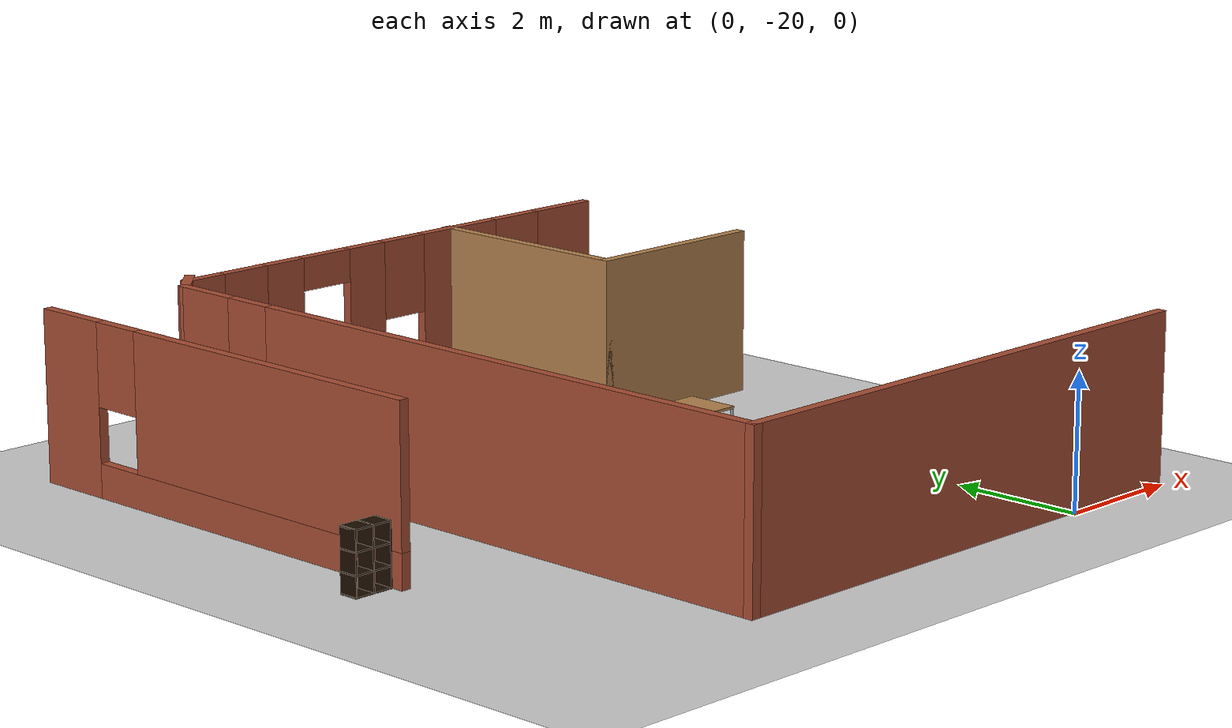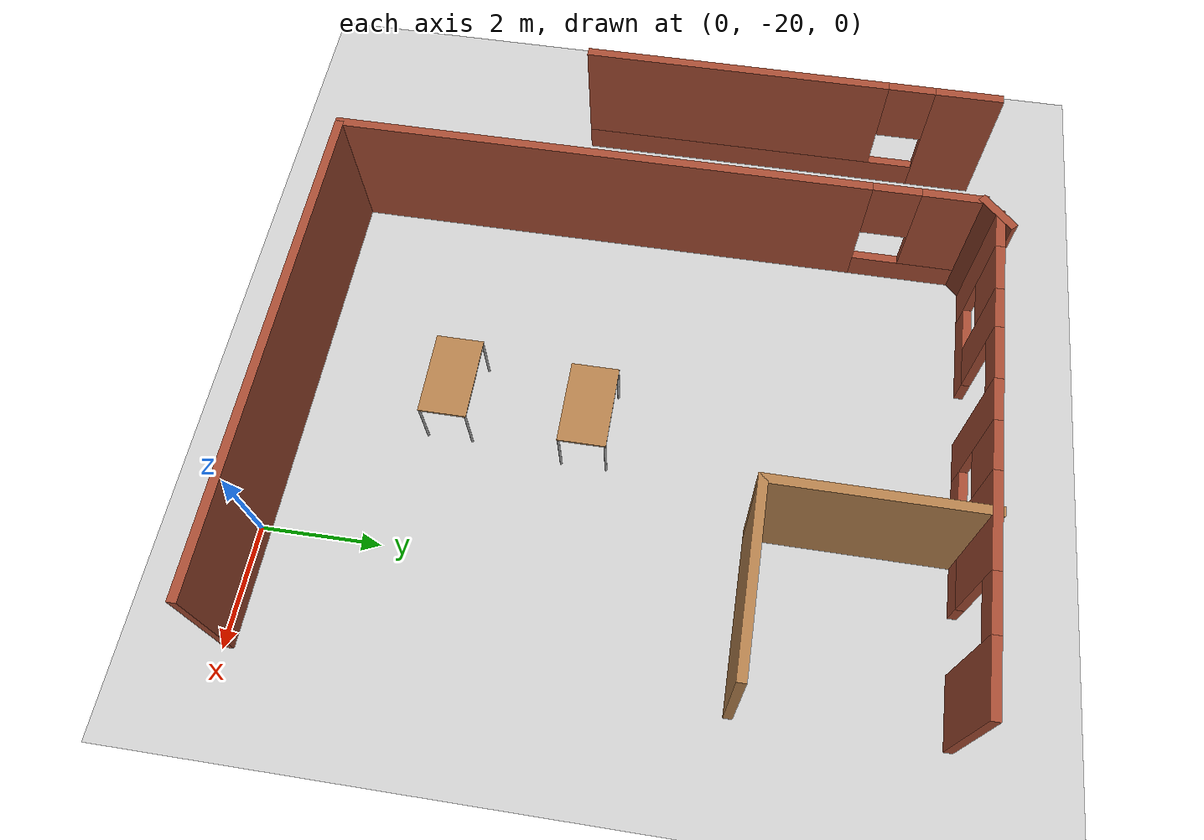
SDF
<sdf version="1.6">
 <world name="default">
  <model name="ground_plane">
   <static>1</static>
   <link name="link">
    <collision name="collision">
     <geometry><plane><normal>0 0 1</normal><size>100 100</size></plane></geometry>
     <surface><friction><ode><mu>100</mu><mu2>50</mu2></ode></friction></surface>
    </collision>
    <visual name="visual">
     <cast_shadows>0</cast_shadows>
     <geometry><plane><normal>0 0 1</normal><size>100 100</size></plane></geometry>
     <material>
      <script><uri>file://media/materials/scripts/gazebo.material</uri><name>Gazebo/Grey</name></script>
     </material>
    </visual>
   </link>
  </model>
  <model name="vital">
   <pose>1.2398 -2.19799 0 0 -0 0</pose>
   <link name="Wall_113">
    <pose>-9.88551 -10.1726 0 0 0 -1.5708</pose>
    <visual name="Wall_113_Visual_0">
     <pose>-3.04191 0 1.25 0 -0 0</pose>
     <geometry><box><size>1.16617 0.15 2.5</size></box></geometry>
     <material>
      <script><uri>file://media/materials/scripts/gazebo.material</uri><name>Gazebo/Bricks</name></script>
      <ambient>1 1 1 1</ambient>
     </material>
    </visual>
    <collision name="Wall_113_Collision_0">
     <geometry><box><size>1.16617 0.15 2.5</size></box></geometry>
     <pose>-3.04191 0 1.25 0 -0 0</pose>
    </collision>
    <visual name="Wall_113_Visual_1">
     <pose>0.583086 0 0.25 0 -0 0</pose>
     <geometry><box><size>6.08383 0.15 0.5</size></box></geometry>
     <material>
      <script><uri>file://media/materials/scripts/gazebo.material</uri><name>Gazebo/Bricks</name></script>
      <ambient>1 1 1 1</ambient>
     </material>
    </visual>
    <collision name="Wall_113_Collision_1">
     <geometry><box><size>6.08383 0.15 0.5</size></box></geometry>
     <pose>0.583086 0 0.25 0 -0 0</pose>
    </collision>
    <visual name="Wall_113_Visual_2">
     <pose>0.983086 0 1.5 0 -0 0</pose>
     <geometry><box><size>5.28383 0.15 2</size></box></geometry>
     <material>
      <script><uri>file://media/materials/scripts/gazebo.material</uri><name>Gazebo/Bricks</name></script>
      <ambient>1 1 1 1</ambient>
     </material>
    </visual>
    <collision name="Wall_113_Collision_2">
     <geometry><box><size>5.28383 0.15 2</size></box></geometry>
     <pose>0.983086 0 1.5 0 -0 0</pose>
    </collision>
    <visual name="Wall_113_Visual_3">
     <pose>-2.05883 0 1.9 0 -0 0</pose>
     <geometry><box><size>0.8 0.15 1.2</size></box></geometry>
     <material>
      <script><uri>file://media/materials/scripts/gazebo.material</uri><name>Gazebo/Bricks</name></script>
      <ambient>1 1 1 1</ambient>
     </material>
    </visual>
    <collision name="Wall_113_Collision_3">
     <geometry><box><size>0.8 0.15 1.2</size></box></geometry>
     <pose>-2.05883 0 1.9 0 -0 0</pose>
    </collision>
   </link>
   <link name="Wall_116">
    <pose>-3.44702 -6.63306 0 0 0 -0.006694</pose>
    <visual name="Wall_116_Visual_0">
     <pose>-3.71942 0 1.25 0 -0 0</pose>
     <geometry><box><size>0.704332 0.15 2.5</size></box></geometry>
     <material>
      <script><uri>file://media/materials/scripts/gazebo.material</uri><name>Gazebo/Bricks</name></script>
      <ambient>1 1 1 1</ambient>
     </material>
    </visual>
    <collision name="Wall_116_Collision_0">
     <geometry><box><size>0.704332 0.15 2.5</size></box></geometry>
     <pose>-3.71942 0 1.25 0 -0 0</pose>
    </collision>
    <visual name="Wall_116_Visual_1">
     <pose>-0.624879 0 1.25 0 -0 0</pose>
     <geometry><box><size>0.697096 0.15 2.5</size></box></geometry>
     <material>
      <script><uri>file://media/materials/scripts/gazebo.material</uri><name>Gazebo/Bricks</name></script>
      <ambient>1 1 1 1</ambient>
     </material>
    </visual>
    <collision name="Wall_116_Collision_1">
     <geometry><box><size>0.697096 0.15 2.5</size></box></geometry>
     <pose>-0.624879 0 1.25 0 -0 0</pose>
    </collision>
    <visual name="Wall_116_Visual_2">
     <pose>3.5022 0 1.25 0 -0 0</pose>
     <geometry><box><size>1.13877 0.15 2.5</size></box></geometry>
     <material>
      <script><uri>file://media/materials/scripts/gazebo.material</uri><name>Gazebo/Bricks</name></script>
      <ambient>1 1 1 1</ambient>
     </material>
    </visual>
    <collision name="Wall_116_Collision_2">
     <geometry><box><size>1.13877 0.15 2.5</size></box></geometry>
     <pose>3.5022 0 1.25 0 -0 0</pose>
    </collision>
    <visual name="Wall_116_Visual_3">
     <pose>-2.62034 0 0.25 0 -0 0</pose>
     <geometry><box><size>1.49383 0.15 0.5</size></box></geometry>
     <material>
      <script><uri>file://media/materials/scripts/gazebo.material</uri><name>Gazebo/Bricks</name></script>
      <ambient>1 1 1 1</ambient>
     </material>
    </visual>
    <collision name="Wall_116_Collision_3">
     <geometry><box><size>1.49383 0.15 0.5</size></box></geometry>
     <pose>-2.62034 0 0.25 0 -0 0</pose>
    </collision>
    <visual name="Wall_116_Visual_4">
     <pose>0.878245 0 0.25 0 -0 0</pose>
     <geometry><box><size>2.30915 0.15 0.5</size></box></geometry>
     <material>
      <script><uri>file://media/materials/scripts/gazebo.material</uri><name>Gazebo/Bricks</name></script>
      <ambient>1 1 1 1</ambient>
     </material>
    </visual>
    <collision name="Wall_116_Collision_4">
     <geometry><box><size>2.30915 0.15 0.5</size></box></geometry>
     <pose>0.878245 0 0.25 0 -0 0</pose>
    </collision>
    <visual name="Wall_116_Visual_5">
     <pose>-2.22034 0 1.5 0 -0 0</pose>
     <geometry><box><size>0.693829 0.15 2</size></box></geometry>
     <material>
      <script><uri>file://media/materials/scripts/gazebo.material</uri><name>Gazebo/Bricks</name></script>
      <ambient>1 1 1 1</ambient>
     </material>
    </visual>
    <collision name="Wall_116_Collision_5">
     <geometry><box><size>0.693829 0.15 2</size></box></geometry>
     <pose>-2.22034 0 1.5 0 -0 0</pose>
    </collision>
    <visual name="Wall_116_Visual_6">
     <pose>-2.22034 0 1.5 0 -0 0</pose>
     <geometry><box><size>0.693829 0.15 2</size></box></geometry>
     <material>
      <script><uri>file://media/materials/scripts/gazebo.material</uri><name>Gazebo/Bricks</name></script>
      <ambient>1 1 1 1</ambient>
     </material>
    </visual>
    <collision name="Wall_116_Collision_6">
     <geometry><box><size>0.693829 0.15 2</size></box></geometry>
     <pose>-2.22034 0 1.5 0 -0 0</pose>
    </collision>
    <visual name="Wall_116_Visual_7">
     <pose>1.27825 0 1.5 0 -0 0</pose>
     <geometry><box><size>1.50915 0.15 2</size></box></geometry>
     <material>
      <script><uri>file://media/materials/scripts/gazebo.material</uri><name>Gazebo/Bricks</name></script>
      <ambient>1 1 1 1</ambient>
     </material>
    </visual>
    <collision name="Wall_116_Collision_7">
     <geometry><box><size>1.50915 0.15 2</size></box></geometry>
     <pose>1.27825 0 1.5 0 -0 0</pose>
    </collision>
    <visual name="Wall_116_Visual_8">
     <pose>-2.96726 0 1.9 0 -0 0</pose>
     <geometry><box><size>0.8 0.15 1.2</size></box></geometry>
     <material>
      <script><uri>file://media/materials/scripts/gazebo.material</uri><name>Gazebo/Bricks</name></script>
      <ambient>1 1 1 1</ambient>
     </material>
    </visual>
    <collision name="Wall_116_Collision_8">
     <geometry><box><size>0.8 0.15 1.2</size></box></geometry>
     <pose>-2.96726 0 1.9 0 -0 0</pose>
    </collision>
    <visual name="Wall_116_Visual_9">
     <pose>0.12367 0 1.9 0 -0 0</pose>
     <geometry><box><size>0.8 0.15 1.2</size></box></geometry>
     <material>
      <script><uri>file://media/materials/scripts/gazebo.material</uri><name>Gazebo/Bricks</name></script>
      <ambient>1 1 1 1</ambient>
     </material>
    </visual>
    <collision name="Wall_116_Collision_9">
     <geometry><box><size>0.8 0.15 1.2</size></box></geometry>
     <pose>0.12367 0 1.9 0 -0 0</pose>
    </collision>
    <visual name="Wall_116_Visual_10">
     <pose>-1.42343 0 2.25 0 -0 0</pose>
     <geometry><box><size>0.9 0.15 0.5</size></box></geometry>
     <material>
      <script><uri>file://media/materials/scripts/gazebo.material</uri><name>Gazebo/Bricks</name></script>
      <ambient>1 1 1 1</ambient>
     </material>
    </visual>
    <collision name="Wall_116_Collision_10">
     <geometry><box><size>0.9 0.15 0.5</size></box></geometry>
     <pose>-1.42343 0 2.25 0 -0 0</pose>
    </collision>
    <visual name="Wall_116_Visual_11">
     <pose>-1.42343 0 2.25 0 -0 0</pose>
     <geometry><box><size>0.9 0.15 0.5</size></box></geometry>
     <material>
      <script><uri>file://media/materials/scripts/gazebo.material</uri><name>Gazebo/Bricks</name></script>
      <ambient>1 1 1 1</ambient>
     </material>
    </visual>
    <collision name="Wall_116_Collision_11">
     <geometry><box><size>0.9 0.15 0.5</size></box></geometry>
     <pose>-1.42343 0 2.25 0 -0 0</pose>
    </collision>
    <visual name="Wall_116_Visual_12">
     <pose>2.48282 0 2.25 0 -0 0</pose>
     <geometry><box><size>0.9 0.15 0.5</size></box></geometry>
     <material>
      <script><uri>file://media/materials/scripts/gazebo.material</uri><name>Gazebo/Bricks</name></script>
      <ambient>1 1 1 1</ambient>
     </material>
    </visual>
    <collision name="Wall_116_Collision_12">
     <geometry><box><size>0.9 0.15 0.5</size></box></geometry>
     <pose>2.48282 0 2.25 0 -0 0</pose>
    </collision>
   </link>
   <link name="Wall_118">
    <collision name="Wall_118_Collision">
     <geometry><box><size>8.5 0.15 2.5</size></box></geometry>
     <pose>0 0 1.25 0 -0 0</pose>
    </collision>
    <visual name="Wall_118_Visual">
     <pose>0 0 1.25 0 -0 0</pose>
     <geometry><box><size>8.5 0.15 2.5</size></box></geometry>
     <material>
      <script><uri>file://media/materials/scripts/gazebo.material</uri><name>Gazebo/Bricks</name></script>
      <ambient>1 1 1 1</ambient>
     </material>
    </visual>
    <pose>-3.51851 -17.7063 0 0 -0 3.14159</pose>
   </link>
   <link name="Wall_119">
    <pose>-7.69351 -12.2813 0 0 -0 1.5708</pose>
    <visual name="Wall_119_Visual_0">
     <pose>-0.947604 0 1.25 0 -0 0</pose>
     <geometry><box><size>9.10479 0.15 2.5</size></box></geometry>
     <material>
      <script><uri>file://media/materials/scripts/gazebo.material</uri><name>Gazebo/Bricks</name></script>
      <ambient>1 1 1 1</ambient>
     </material>
    </visual>
    <collision name="Wall_119_Collision_0">
     <geometry><box><size>9.10479 0.15 2.5</size></box></geometry>
     <pose>-0.947604 0 1.25 0 -0 0</pose>
    </collision>
    <visual name="Wall_119_Visual_1">
     <pose>4.5524 0 0.25 0 -0 0</pose>
     <geometry><box><size>1.89521 0.15 0.5</size></box></geometry>
     <material>
      <script><uri>file://media/materials/scripts/gazebo.material</uri><name>Gazebo/Bricks</name></script>
      <ambient>1 1 1 1</ambient>
     </material>
    </visual>
    <collision name="Wall_119_Collision_1">
     <geometry><box><size>1.89521 0.15 0.5</size></box></geometry>
     <pose>4.5524 0 0.25 0 -0 0</pose>
    </collision>
    <visual name="Wall_119_Visual_2">
     <pose>4.9524 0 1.5 0 -0 0</pose>
     <geometry><box><size>1.09521 0.15 2</size></box></geometry>
     <material>
      <script><uri>file://media/materials/scripts/gazebo.material</uri><name>Gazebo/Bricks</name></script>
      <ambient>1 1 1 1</ambient>
     </material>
    </visual>
    <collision name="Wall_119_Collision_2">
     <geometry><box><size>1.09521 0.15 2</size></box></geometry>
     <pose>4.9524 0 1.5 0 -0 0</pose>
    </collision>
    <visual name="Wall_119_Visual_3">
     <pose>4.00479 0 1.9 0 -0 0</pose>
     <geometry><box><size>0.8 0.15 1.2</size></box></geometry>
     <material>
      <script><uri>file://media/materials/scripts/gazebo.material</uri><name>Gazebo/Bricks</name></script>
      <ambient>1 1 1 1</ambient>
     </material>
    </visual>
    <collision name="Wall_119_Collision_3">
     <geometry><box><size>0.8 0.15 1.2</size></box></geometry>
     <pose>4.00479 0 1.9 0 -0 0</pose>
    </collision>
   </link>
   <link name="Wall_120">
    <collision name="Wall_120_Collision">
     <geometry><box><size>0.75 0.15 2.5</size></box></geometry>
     <pose>0 0 1.25 0 -0 0</pose>
    </collision>
    <visual name="Wall_120_Visual">
     <pose>0 0 1.25 0 -0 0</pose>
     <geometry><box><size>0.75 0.15 2.5</size></box></geometry>
     <material>
      <script><uri>file://media/materials/scripts/gazebo.material</uri><name>Gazebo/Bricks</name></script>
      <ambient>1 1 1 1</ambient>
     </material>
    </visual>
    <pose>-7.48138 -6.64417 0 0 -0 0.785398</pose>
   </link>
   <link name="Wall_122">
    <collision name="Wall_122_Collision">
     <geometry><box><size>3.5 0.15 2.5</size></box></geometry>
     <pose>0 0 1.25 0 -0 0</pose>
    </collision>
    <visual name="Wall_122_Visual">
     <pose>0 0 1.25 0 -0 0</pose>
     <geometry><box><size>3.5 0.15 2.5</size></box></geometry>
     <material>
      <script><uri>file://media/materials/scripts/gazebo.material</uri><name>Gazebo/Wood</name></script>
      <ambient>1 1 1 1</ambient>
     </material>
    </visual>
    <pose>-2.29682 -8.28131 0 0 0 -1.5708</pose>
   </link>
   <link name="Wall_123">
    <collision name="Wall_123_Collision">
     <geometry><box><size>3 0.15 2.5</size></box></geometry>
     <pose>0 0 1.25 0 -0 0</pose>
    </collision>
    <visual name="Wall_123_Visual">
     <pose>0 0 1.25 0 -0 0</pose>
     <geometry><box><size>3 0.15 2.5</size></box></geometry>
     <material>
      <script><uri>file://media/materials/scripts/gazebo.material</uri><name>Gazebo/Wood</name></script>
      <ambient>1 1 1 1</ambient>
     </material>
    </visual>
    <pose>-0.871823 -9.95631 0 0 -0 0</pose>
   </link>
   <static>1</static>
  </model>
  <model name="table">
   <static>0</static>
   <link name="link">
    <collision name="surface">
     <pose>0 0 1 0 -0 0</pose>
     <geometry><box><size>1.5 0.8 0.03</size></box></geometry>
     <surface><friction><ode><mu>0.6</mu><mu2>0.6</mu2></ode></friction></surface>
    </collision>
    <visual name="visual1">
     <pose>0 0 1 0 -0 0</pose>
     <geometry><box><size>1.4 0.8 0.04</size></box></geometry>
     <material>
      <script><uri>file://media/materials/scripts/gazebo.material</uri><name>Gazebo/Wood</name></script>
     </material>
    </visual>
    <collision name="front_left_leg">
     <pose>0.68 0.38 0.5 0 -0 0</pose>
     <geometry><cylinder><radius>0.02</radius><length>1</length></cylinder></geometry>
    </collision>
    <visual name="front_left_leg">
     <pose>0.68 0.38 0.5 0 -0 0</pose>
     <geometry><cylinder><radius>0.02</radius><length>1</length></cylinder></geometry>
     <material>
      <script><uri>file://media/materials/scripts/gazebo.material</uri><name>Gazebo/Grey</name></script>
     </material>
    </visual>
    <collision name="front_right_leg">
     <pose>0.68 -0.38 0.5 0 -0 0</pose>
     <geometry><cylinder><radius>0.02</radius><length>1</length></cylinder></geometry>
    </collision>
    <visual name="front_right_leg">
     <pose>0.68 -0.38 0.5 0 -0 0</pose>
     <geometry><cylinder><radius>0.02</radius><length>1</length></cylinder></geometry>
     <material>
      <script><uri>file://media/materials/scripts/gazebo.material</uri><name>Gazebo/Grey</name></script>
     </material>
    </visual>
    <collision name="back_right_leg">
     <pose>-0.68 -0.38 0.5 0 -0 0</pose>
     <geometry><cylinder><radius>0.02</radius><length>1</length></cylinder></geometry>
    </collision>
    <visual name="back_right_leg">
     <pose>-0.68 -0.38 0.5 0 -0 0</pose>
     <geometry><cylinder><radius>0.02</radius><length>1</length></cylinder></geometry>
     <material>
      <script><uri>file://media/materials/scripts/gazebo.material</uri><name>Gazebo/Grey</name></script>
     </material>
    </visual>
    <collision name="back_left_leg">
     <pose>-0.68 0.38 0.5 0 -0 0</pose>
     <geometry><cylinder><radius>0.02</radius><length>1</length></cylinder></geometry>
    </collision>
    <visual name="back_left_leg">
     <pose>-0.68 0.38 0.5 0 -0 0</pose>
     <geometry><cylinder><radius>0.02</radius><length>1</length></cylinder></geometry>
     <material>
      <script><uri>file://media/materials/scripts/gazebo.material</uri><name>Gazebo/Grey</name></script>
     </material>
    </visual>
    <inertial>
     <inertia><ixx>1</ixx><ixy>0</ixy><ixz>0</ixz><iyy>1</iyy><iyz>0</iyz><izz>1</izz></inertia>
     <mass>1</mass>
    </inertial>
   </link>
   <pose>-2.70683 -17.3168 -1e-06 1e-06 -0 0</pose>
  </model>
  <model name="table_0">
   <static>0</static>
   <link name="link">
    <collision name="surface">
     <pose>0 0 1 0 -0 0</pose>
     <geometry><box><size>1.5 0.8 0.03</size></box></geometry>
     <surface><friction><ode><mu>0.6</mu><mu2>0.6</mu2></ode></friction></surface>
    </collision>
    <visual name="visual1">
     <pose>0 0 1 0 -0 0</pose>
     <geometry><box><size>1.4 0.8 0.04</size></box></geometry>
     <material>
      <script><uri>file://media/materials/scripts/gazebo.material</uri><name>Gazebo/Wood</name></script>
     </material>
    </visual>
    <collision name="front_left_leg">
     <pose>0.68 0.38 0.5 0 -0 0</pose>
     <geometry><cylinder><radius>0.02</radius><length>1</length></cylinder></geometry>
    </collision>
    <visual name="front_left_leg">
     <pose>0.68 0.38 0.5 0 -0 0</pose>
     <geometry><cylinder><radius>0.02</radius><length>1</length></cylinder></geometry>
     <material>
      <script><uri>file://media/materials/scripts/gazebo.material</uri><name>Gazebo/Grey</name></script>
     </material>
    </visual>
    <collision name="front_right_leg">
     <pose>0.68 -0.38 0.5 0 -0 0</pose>
     <geometry><cylinder><radius>0.02</radius><length>1</length></cylinder></geometry>
    </collision>
    <visual name="front_right_leg">
     <pose>0.68 -0.38 0.5 0 -0 0</pose>
     <geometry><cylinder><radius>0.02</radius><length>1</length></cylinder></geometry>
     <material>
      <script><uri>file://media/materials/scripts/gazebo.material</uri><name>Gazebo/Grey</name></script>
     </material>
    </visual>
    <collision name="back_right_leg">
     <pose>-0.68 -0.38 0.5 0 -0 0</pose>
     <geometry><cylinder><radius>0.02</radius><length>1</length></cylinder></geometry>
    </collision>
    <visual name="back_right_leg">
     <pose>-0.68 -0.38 0.5 0 -0 0</pose>
     <geometry><cylinder><radius>0.02</radius><length>1</length></cylinder></geometry>
     <material>
      <script><uri>file://media/materials/scripts/gazebo.material</uri><name>Gazebo/Grey</name></script>
     </material>
    </visual>
    <collision name="back_left_leg">
     <pose>-0.68 0.38 0.5 0 -0 0</pose>
     <geometry><cylinder><radius>0.02</radius><length>1</length></cylinder></geometry>
    </collision>
    <visual name="back_left_leg">
     <pose>-0.68 0.38 0.5 0 -0 0</pose>
     <geometry><cylinder><radius>0.02</radius><length>1</length></cylinder></geometry>
     <material>
      <script><uri>file://media/materials/scripts/gazebo.material</uri><name>Gazebo/Grey</name></script>
     </material>
    </visual>
    <inertial>
     <inertia><ixx>1</ixx><ixy>0</ixy><ixz>0</ixz><iyy>1</iyy><iyz>0</iyz><izz>1</izz></inertia>
     <mass>1</mass>
    </inertial>
   </link>
   <pose>-2.52923 -14.9943 -9e-06 -1e-06 0 0</pose>
  </model>
  <model name="6_Cube_StorageE">
   <link name="Wall_0">
    <pose>0 0 0.01 0 -0 0</pose>
    <inertial>
     <mass>1.6201</mass>
     <inertia><ixx>0.0119</ixx><iyy>0.0631</iyy><izz>0.0513</izz><ixy>0</ixy><ixz>0</ixz><iyz>0</iyz></inertia>
    </inertial>
    <collision name="Wall_0_Collision"><geometry><box><size>0.616 0.296 0.02</size></box></geometry></collision>
    <visual name="Wall_0_Visual">
     <geometry><box><size>0.616 0.296 0.02</size></box></geometry>
     <material>
      <script><uri>file://media/materials/scripts/gazebo.material</uri><name>Gazebo/Grey</name></script>
      <ambient>0.105882 0.0509804 0 1</ambient>
     </material>
    </visual>
   </link>
   <joint name="0_2" type="fixed">
    <pose>-0.308 0 0 0 -0 0</pose>
    <parent>Wall_2</parent>
    <child>Wall_0</child>
    <axis>
     <xyz>1 0 0</xyz>
     <use_parent_model_frame>0</use_parent_model_frame>
     <limit><lower>-1e+16</lower><upper>1e+16</upper></limit>
    </axis>
   </joint>
   <joint name="0_12" type="fixed">
    <parent>Wall_12</parent>
    <child>Wall_0</child>
    <axis>
     <xyz>0 0 1</xyz>
     <use_parent_model_frame>0</use_parent_model_frame>
     <limit><lower>-1e+16</lower><upper>1e+16</upper></limit>
    </axis>
   </joint>
   <joint name="0_4" type="fixed">
    <pose>0.308 0 0 0 -0 0</pose>
    <parent>Wall_4</parent>
    <child>Wall_0</child>
    <axis>
     <xyz>1 0 0</xyz>
     <use_parent_model_frame>0</use_parent_model_frame>
     <limit><lower>-1e+16</lower><upper>1e+16</upper></limit>
    </axis>
   </joint>
   <link name="Wall_10">
    <pose>0 0 0.61 0 -0 0</pose>
    <inertial>
     <mass>1.6201</mass>
     <inertia><ixx>0.0119</ixx><iyy>0.0631</iyy><izz>0.0513</izz><ixy>0</ixy><ixz>0</ixz><iyz>0</iyz></inertia>
    </inertial>
    <collision name="Wall_10_Collision"><geometry><box><size>0.616 0.296 0.02</size></box></geometry></collision>
    <visual name="Wall_10_Visual">
     <geometry><box><size>0.616 0.296 0.02</size></box></geometry>
     <material>
      <script><uri>file://media/materials/scripts/gazebo.material</uri><name>Gazebo/Grey</name></script>
      <ambient>0.105882 0.0509804 0 1</ambient>
     </material>
    </visual>
   </link>
   <joint name="10_2" type="fixed">
    <pose>-0.308 0 0 0 -0 0</pose>
    <parent>Wall_2</parent>
    <child>Wall_10</child>
    <axis>
     <xyz>1 0 0</xyz>
     <use_parent_model_frame>0</use_parent_model_frame>
     <limit><lower>-1e+16</lower><upper>1e+16</upper></limit>
    </axis>
   </joint>
   <joint name="10_12" type="fixed">
    <parent>Wall_12</parent>
    <child>Wall_10</child>
    <axis>
     <xyz>0 0 1</xyz>
     <use_parent_model_frame>0</use_parent_model_frame>
     <limit><lower>-1e+16</lower><upper>1e+16</upper></limit>
    </axis>
   </joint>
   <joint name="10_4" type="fixed">
    <pose>0.308 0 0 0 -0 0</pose>
    <parent>Wall_4</parent>
    <child>Wall_10</child>
    <axis>
     <xyz>1 0 0</xyz>
     <use_parent_model_frame>0</use_parent_model_frame>
     <limit><lower>-1e+16</lower><upper>1e+16</upper></limit>
    </axis>
   </joint>
   <link name="Wall_12">
    <pose>0 0 0.4575 0 -0 0</pose>
    <inertial>
     <mass>2.4065</mass>
     <inertia><ixx>0.0177</ixx><iyy>0.1855</iyy><izz>0.168</izz><ixy>0</ixy><ixz>0</ixz><iyz>0</iyz></inertia>
    </inertial>
    <collision name="Wall_12_Collision"><geometry><box><size>0.02 0.296 0.915</size></box></geometry></collision>
    <visual name="Wall_12_Visual">
     <geometry><box><size>0.02 0.296 0.915</size></box></geometry>
     <material>
      <script><uri>file://media/materials/scripts/gazebo.material</uri><name>Gazebo/Grey</name></script>
      <ambient>0.105882 0.0509804 0 1</ambient>
     </material>
    </visual>
   </link>
   <link name="Wall_2">
    <pose>-0.298 0 0.4575 0 -0 0</pose>
    <inertial>
     <mass>2.4065</mass>
     <inertia><ixx>0.0177</ixx><iyy>0.1855</iyy><izz>0.168</izz><ixy>0</ixy><ixz>0</ixz><iyz>0</iyz></inertia>
    </inertial>
    <collision name="Wall_2_Collision"><geometry><box><size>0.02 0.296 0.915</size></box></geometry></collision>
    <visual name="Wall_2_Visual">
     <geometry><box><size>0.02 0.296 0.915</size></box></geometry>
     <material>
      <script><uri>file://media/materials/scripts/gazebo.material</uri><name>Gazebo/Grey</name></script>
      <ambient>0.105882 0.0509804 0 1</ambient>
     </material>
    </visual>
   </link>
   <link name="Wall_4">
    <pose>0.298 0 0.4575 0 -0 0</pose>
    <inertial>
     <mass>2.4065</mass>
     <inertia><ixx>0.0177</ixx><iyy>0.1855</iyy><izz>0.168</izz><ixy>0</ixy><ixz>0</ixz><iyz>0</iyz></inertia>
    </inertial>
    <collision name="Wall_4_Collision"><geometry><box><size>0.02 0.296 0.915</size></box></geometry></collision>
    <visual name="Wall_4_Visual">
     <geometry><box><size>0.02 0.296 0.915</size></box></geometry>
     <material>
      <script><uri>file://media/materials/scripts/gazebo.material</uri><name>Gazebo/Grey</name></script>
      <ambient>0.105882 0.0509804 0 1</ambient>
     </material>
    </visual>
   </link>
   <link name="Wall_6">
    <pose>0 0 0.905 0 -0 0</pose>
    <inertial>
     <mass>1.6201</mass>
     <inertia><ixx>0.0119</ixx><iyy>0.0631</iyy><izz>0.0513</izz><ixy>0</ixy><ixz>0</ixz><iyz>0</iyz></inertia>
    </inertial>
    <collision name="Wall_6_Collision"><geometry><box><size>0.616 0.296 0.02</size></box></geometry></collision>
    <visual name="Wall_6_Visual">
     <geometry><box><size>0.616 0.296 0.02</size></box></geometry>
     <material>
      <script><uri>file://media/materials/scripts/gazebo.material</uri><name>Gazebo/Grey</name></script>
      <ambient>0.105882 0.0509804 0 1</ambient>
     </material>
    </visual>
   </link>
   <joint name="6_2" type="fixed">
    <pose>-0.308 0 0 0 -0 0</pose>
    <parent>Wall_2</parent>
    <child>Wall_6</child>
    <axis>
     <xyz>2 0 0</xyz>
     <use_parent_model_frame>0</use_parent_model_frame>
     <limit><lower>-1e+16</lower><upper>1e+16</upper></limit>
    </axis>
   </joint>
   <joint name="6_12" type="fixed">
    <parent>Wall_12</parent>
    <child>Wall_6</child>
    <axis>
     <xyz>0 0 1</xyz>
     <use_parent_model_frame>0</use_parent_model_frame>
     <limit><lower>-1e+16</lower><upper>1e+16</upper></limit>
    </axis>
   </joint>
   <joint name="6_4" type="fixed">
    <pose>0.308 0 0 0 -0 0</pose>
    <parent>Wall_4</parent>
    <child>Wall_6</child>
    <axis>
     <xyz>1 0 0</xyz>
     <use_parent_model_frame>0</use_parent_model_frame>
     <limit><lower>-1e+16</lower><upper>1e+16</upper></limit>
    </axis>
   </joint>
   <link name="Wall_8">
    <pose>0 0 0.305 0 -0 0</pose>
    <inertial>
     <mass>1.6201</mass>
     <inertia><ixx>0.0119</ixx><iyy>0.0631</iyy><izz>0.0513</izz><ixy>0</ixy><ixz>0</ixz><iyz>0</iyz></inertia>
    </inertial>
    <collision name="Wall_8_Collision"><geometry><box><size>0.616 0.296 0.02</size></box></geometry></collision>
    <visual name="Wall_8_Visual">
     <geometry><box><size>0.616 0.296 0.02</size></box></geometry>
     <material>
      <script><uri>file://media/materials/scripts/gazebo.material</uri><name>Gazebo/Grey</name></script>
      <ambient>0.105882 0.0509804 0 1</ambient>
     </material>
    </visual>
   </link>
   <joint name="8_2" type="fixed">
    <pose>-0.308 0 0 0 -0 0</pose>
    <parent>Wall_2</parent>
    <child>Wall_8</child>
    <axis>
     <xyz>1 0 0</xyz>
     <use_parent_model_frame>0</use_parent_model_frame>
     <limit><lower>-1e+16</lower><upper>1e+16</upper></limit>
    </axis>
   </joint>
   <joint name="8_12" type="fixed">
    <parent>Wall_12</parent>
    <child>Wall_8</child>
    <axis>
     <xyz>0 0 1</xyz>
     <use_parent_model_frame>0</use_parent_model_frame>
     <limit><lower>-1e+16</lower><upper>1e+16</upper></limit>
    </axis>
   </joint>
   <joint name="8_4" type="fixed">
    <pose>0.308 0 0 0 -0 0</pose>
    <parent>Wall_4</parent>
    <child>Wall_8</child>
    <axis>
     <xyz>1 0 0</xyz>
     <use_parent_model_frame>0</use_parent_model_frame>
     <limit><lower>-1e+16</lower><upper>1e+16</upper></limit>
    </axis>
   </joint>
   <static>1</static>
   <pose>-9.04252 -15.6768 0 0 -0 0</pose>
  </model>
 </world>
</sdf>
